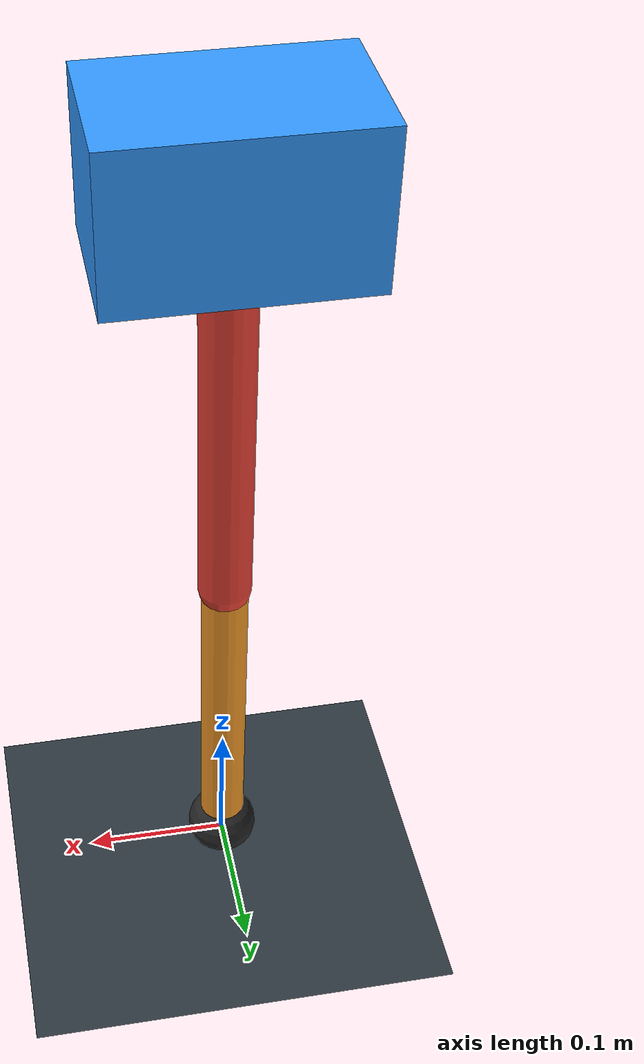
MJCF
<mujoco model="single_axis_two_bar">
  <compiler angle="radian" inertiafromgeom="true"/>
  <option timestep="0.001" integrator="implicitfast" gravity="0 0 -9.81"/>
  <default>
    <joint damping="0.08"/>
    <geom friction="1.2 0.01 0.0001" condim="3"/>
  </default>
  <worldbody>
    <geom name="floor" type="plane" size="5 5 0.1" rgba="0.18 0.22 0.25 1"/>
    <body name="carriage" pos="0 0 0.5560298406236485">
      <joint name="pole_slide" type="slide" axis="0 0 1"/>
      <geom name="payload" type="box" size="0.08 0.05 0.05" mass="3.2814499985481644" rgba="0.2 0.6 1 1"/>
      <body name="thigh" pos="0 0 0">
        <joint name="hip" type="hinge" axis="0 1 0"/>
        <geom name="thigh_link" type="capsule" fromto="0 0 0 0 0 -0.302712501897648" size="0.018" mass="0.21568665759487393" rgba="0.9 0.25 0.2 1"/>
        <body name="shank" pos="0 0 -0.302712501897648">
          <joint name="knee" type="hinge" axis="0 1 0"/>
          <geom name="shank_link" type="capsule" fromto="0 0 0 0 0 -0.24474094204425764" size="0.016" mass="0.17438115517275515" rgba="0.95 0.6 0.15 1"/>
          <geom name="foot" type="sphere" pos="0 0 -0.24474094204425764" size="0.025" mass="0.03" rgba="0.15 0.15 0.15 1"/>
          <site name="toe" pos="0 0 -0.24474094204425764" size="0.008"/>
        </body>
      </body>
    </body>
  </worldbody>
  <actuator>
    <motor name="hip_motor" joint="hip" ctrlrange="-24.68314854042411 24.68314854042411"/>
    <motor name="knee_motor" joint="knee" ctrlrange="-131.98944463390472 131.98944463390472"/>
  </actuator>
</mujoco>
